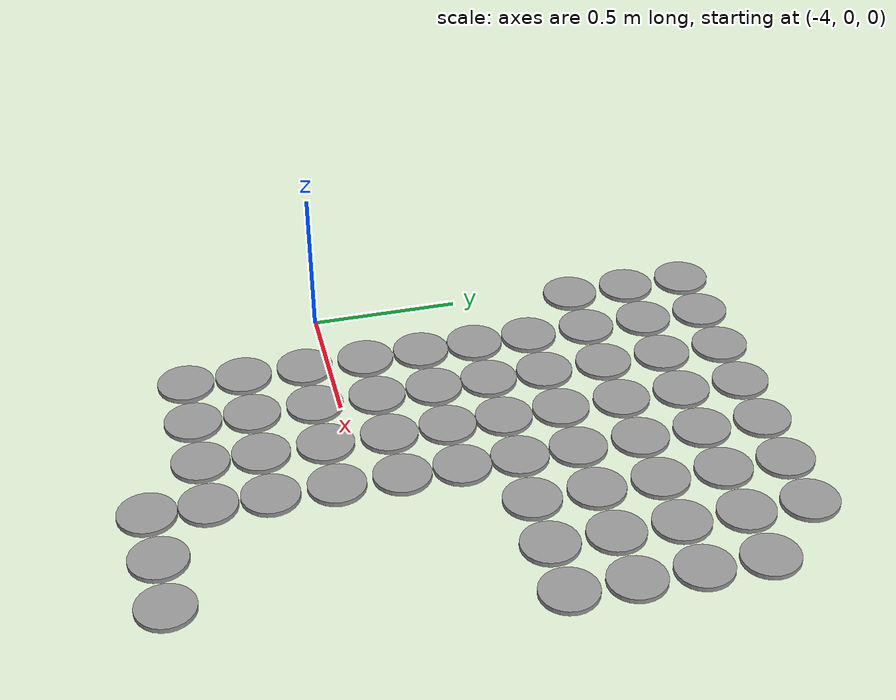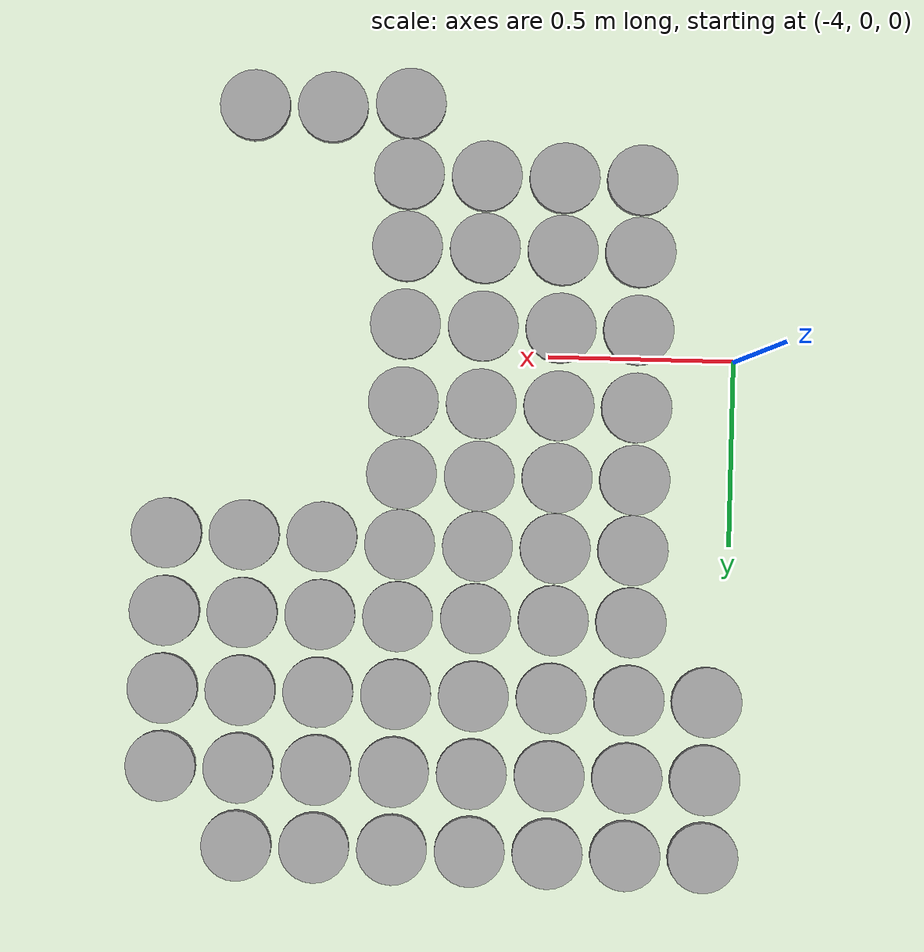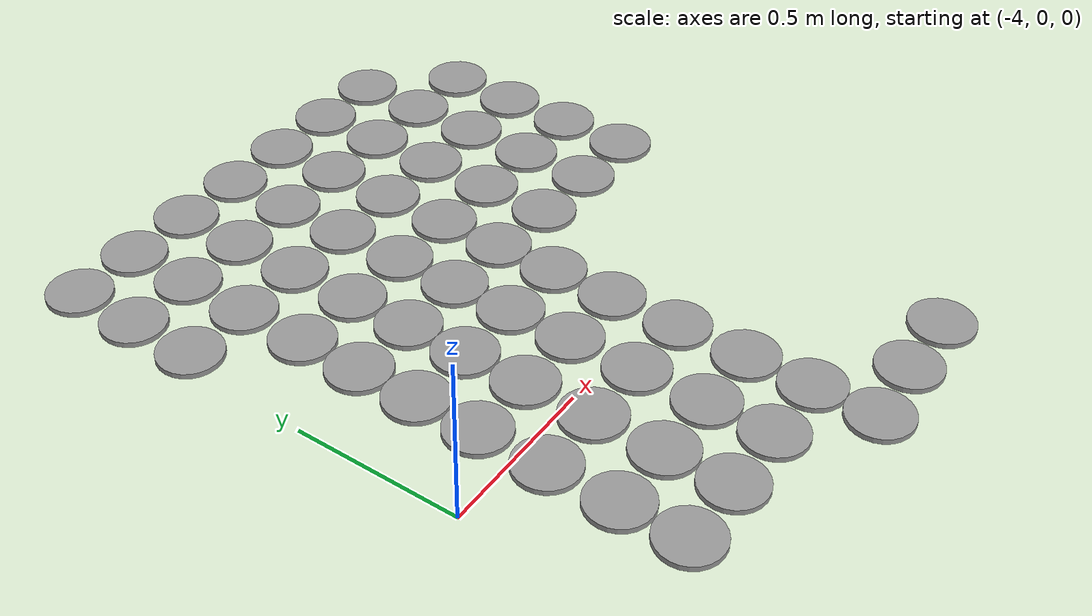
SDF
<sdf version="1.6">
 <world name="default">
  <model name="unit_cylinder_clone_27">
   <pose>-3.95 0.92 0.008117 0 -0 0</pose>
   <link name="link">
    <inertial>
     <mass>1</mass>
     <inertia><ixx>0.145833</ixx><ixy>0</ixy><ixz>0</ixz><iyy>0.145833</iyy><iyz>0</iyz><izz>0.125</izz></inertia>
    </inertial>
    <collision name="collision">
     <geometry><cylinder><radius>0.0950718</radius><length>0.0162339</length></cylinder></geometry>
     <max_contacts>5</max_contacts>
    </collision>
    <visual name="visual">
     <geometry><cylinder><radius>0.0950718</radius><length>0.0162339</length></cylinder></geometry>
     <material>
      <script><name>Gazebo/Grey</name><uri>file://media/materials/scripts/gazebo.material</uri></script>
     </material>
    </visual>
   </link>
  </model>
  <model name="unit_cylinder_clone_28">
   <pose>-3.95 1.13 0.008117 0 -0 0</pose>
   <link name="link">
    <inertial>
     <mass>1</mass>
     <inertia><ixx>0.145833</ixx><ixy>0</ixy><ixz>0</ixz><iyy>0.145833</iyy><iyz>0</iyz><izz>0.125</izz></inertia>
    </inertial>
    <collision name="collision">
     <geometry><cylinder><radius>0.0950718</radius><length>0.0162339</length></cylinder></geometry>
     <max_contacts>5</max_contacts>
    </collision>
    <visual name="visual">
     <geometry><cylinder><radius>0.0950718</radius><length>0.0162339</length></cylinder></geometry>
     <material>
      <script><name>Gazebo/Grey</name><uri>file://media/materials/scripts/gazebo.material</uri></script>
     </material>
    </visual>
   </link>
  </model>
  <model name="unit_cylinder_clone_29">
   <pose>-3.95 1.34 0.008117 0 -0 0</pose>
   <link name="link">
    <inertial>
     <mass>1</mass>
     <inertia><ixx>0.145833</ixx><ixy>0</ixy><ixz>0</ixz><iyy>0.145833</iyy><iyz>0</iyz><izz>0.125</izz></inertia>
    </inertial>
    <collision name="collision">
     <geometry><cylinder><radius>0.0950718</radius><length>0.0162339</length></cylinder></geometry>
     <max_contacts>5</max_contacts>
    </collision>
    <visual name="visual">
     <geometry><cylinder><radius>0.0950718</radius><length>0.0162339</length></cylinder></geometry>
     <material>
      <script><name>Gazebo/Grey</name><uri>file://media/materials/scripts/gazebo.material</uri></script>
     </material>
    </visual>
   </link>
  </model>
  <model name="unit_cylinder_clone_30">
   <pose>-3.74 0.515077 0.008117 0 -0 0</pose>
   <link name="link">
    <inertial>
     <mass>1</mass>
     <inertia><ixx>0.145833</ixx><ixy>0</ixy><ixz>0</ixz><iyy>0.145833</iyy><iyz>0</iyz><izz>0.125</izz></inertia>
    </inertial>
    <collision name="collision">
     <geometry><cylinder><radius>0.0950718</radius><length>0.0162339</length></cylinder></geometry>
     <max_contacts>5</max_contacts>
    </collision>
    <visual name="visual">
     <geometry><cylinder><radius>0.0950718</radius><length>0.0162339</length></cylinder></geometry>
     <material>
      <script><name>Gazebo/Grey</name><uri>file://media/materials/scripts/gazebo.material</uri></script>
     </material>
    </visual>
   </link>
  </model>
  <model name="unit_cylinder_clone_31">
   <pose>-3.74 0.71 0.008117 0 -0 0</pose>
   <link name="link">
    <inertial>
     <mass>1</mass>
     <inertia><ixx>0.145833</ixx><ixy>0</ixy><ixz>0</ixz><iyy>0.145833</iyy><iyz>0</iyz><izz>0.125</izz></inertia>
    </inertial>
    <collision name="collision">
     <geometry><cylinder><radius>0.0950718</radius><length>0.0162339</length></cylinder></geometry>
     <max_contacts>5</max_contacts>
    </collision>
    <visual name="visual">
     <geometry><cylinder><radius>0.0950718</radius><length>0.0162339</length></cylinder></geometry>
     <material>
      <script><name>Gazebo/Grey</name><uri>file://media/materials/scripts/gazebo.material</uri></script>
     </material>
    </visual>
   </link>
  </model>
  <model name="unit_cylinder_clone_32">
   <pose>-3.74 0.92 0.008117 0 -0 0</pose>
   <link name="link">
    <inertial>
     <mass>1</mass>
     <inertia><ixx>0.145833</ixx><ixy>0</ixy><ixz>0</ixz><iyy>0.145833</iyy><iyz>0</iyz><izz>0.125</izz></inertia>
    </inertial>
    <collision name="collision">
     <geometry><cylinder><radius>0.0950718</radius><length>0.0162339</length></cylinder></geometry>
     <max_contacts>5</max_contacts>
    </collision>
    <visual name="visual">
     <geometry><cylinder><radius>0.0950718</radius><length>0.0162339</length></cylinder></geometry>
     <material>
      <script><name>Gazebo/Grey</name><uri>file://media/materials/scripts/gazebo.material</uri></script>
     </material>
    </visual>
   </link>
  </model>
  <model name="unit_cylinder_clone_33">
   <pose>-3.74 1.13 0.008117 0 -0 0</pose>
   <link name="link">
    <inertial>
     <mass>1</mass>
     <inertia><ixx>0.145833</ixx><ixy>0</ixy><ixz>0</ixz><iyy>0.145833</iyy><iyz>0</iyz><izz>0.125</izz></inertia>
    </inertial>
    <collision name="collision">
     <geometry><cylinder><radius>0.0950718</radius><length>0.0162339</length></cylinder></geometry>
     <max_contacts>5</max_contacts>
    </collision>
    <visual name="visual">
     <geometry><cylinder><radius>0.0950718</radius><length>0.0162339</length></cylinder></geometry>
     <material>
      <script><name>Gazebo/Grey</name><uri>file://media/materials/scripts/gazebo.material</uri></script>
     </material>
    </visual>
   </link>
  </model>
  <model name="unit_cylinder_clone_34">
   <pose>-3.74 1.34 0.008117 0 -0 0</pose>
   <link name="link">
    <inertial>
     <mass>1</mass>
     <inertia><ixx>0.145833</ixx><ixy>0</ixy><ixz>0</ixz><iyy>0.145833</iyy><iyz>0</iyz><izz>0.125</izz></inertia>
    </inertial>
    <collision name="collision">
     <geometry><cylinder><radius>0.0950718</radius><length>0.0162339</length></cylinder></geometry>
     <max_contacts>5</max_contacts>
    </collision>
    <visual name="visual">
     <geometry><cylinder><radius>0.0950718</radius><length>0.0162339</length></cylinder></geometry>
     <material>
      <script><name>Gazebo/Grey</name><uri>file://media/materials/scripts/gazebo.material</uri></script>
     </material>
    </visual>
   </link>
  </model>
  <model name="unit_cylinder_clone_35">
   <pose>-3.53 0.515077 0.008117 0 -0 0</pose>
   <link name="link">
    <inertial>
     <mass>1</mass>
     <inertia><ixx>0.145833</ixx><ixy>0</ixy><ixz>0</ixz><iyy>0.145833</iyy><iyz>0</iyz><izz>0.125</izz></inertia>
    </inertial>
    <collision name="collision">
     <geometry><cylinder><radius>0.0950718</radius><length>0.0162339</length></cylinder></geometry>
     <max_contacts>5</max_contacts>
    </collision>
    <visual name="visual">
     <geometry><cylinder><radius>0.0950718</radius><length>0.0162339</length></cylinder></geometry>
     <material>
      <script><name>Gazebo/Grey</name><uri>file://media/materials/scripts/gazebo.material</uri></script>
     </material>
    </visual>
   </link>
  </model>
  <model name="unit_cylinder_clone_36">
   <pose>-3.53 0.71 0.008117 0 -0 0</pose>
   <link name="link">
    <inertial>
     <mass>1</mass>
     <inertia><ixx>0.145833</ixx><ixy>0</ixy><ixz>0</ixz><iyy>0.145833</iyy><iyz>0</iyz><izz>0.125</izz></inertia>
    </inertial>
    <collision name="collision">
     <geometry><cylinder><radius>0.0950718</radius><length>0.0162339</length></cylinder></geometry>
     <max_contacts>5</max_contacts>
    </collision>
    <visual name="visual">
     <geometry><cylinder><radius>0.0950718</radius><length>0.0162339</length></cylinder></geometry>
     <material>
      <script><name>Gazebo/Grey</name><uri>file://media/materials/scripts/gazebo.material</uri></script>
     </material>
    </visual>
   </link>
  </model>
  <model name="unit_cylinder_clone_37">
   <pose>-3.53 0.92 0.008117 0 -0 0</pose>
   <link name="link">
    <inertial>
     <mass>1</mass>
     <inertia><ixx>0.145833</ixx><ixy>0</ixy><ixz>0</ixz><iyy>0.145833</iyy><iyz>0</iyz><izz>0.125</izz></inertia>
    </inertial>
    <collision name="collision">
     <geometry><cylinder><radius>0.0950718</radius><length>0.0162339</length></cylinder></geometry>
     <max_contacts>5</max_contacts>
    </collision>
    <visual name="visual">
     <geometry><cylinder><radius>0.0950718</radius><length>0.0162339</length></cylinder></geometry>
     <material>
      <script><name>Gazebo/Grey</name><uri>file://media/materials/scripts/gazebo.material</uri></script>
     </material>
    </visual>
   </link>
  </model>
  <model name="unit_cylinder_clone_38">
   <pose>-3.53 1.13 0.008117 0 -0 0</pose>
   <link name="link">
    <inertial>
     <mass>1</mass>
     <inertia><ixx>0.145833</ixx><ixy>0</ixy><ixz>0</ixz><iyy>0.145833</iyy><iyz>0</iyz><izz>0.125</izz></inertia>
    </inertial>
    <collision name="collision">
     <geometry><cylinder><radius>0.0950718</radius><length>0.0162339</length></cylinder></geometry>
     <max_contacts>5</max_contacts>
    </collision>
    <visual name="visual">
     <geometry><cylinder><radius>0.0950718</radius><length>0.0162339</length></cylinder></geometry>
     <material>
      <script><name>Gazebo/Grey</name><uri>file://media/materials/scripts/gazebo.material</uri></script>
     </material>
    </visual>
   </link>
  </model>
  <model name="unit_cylinder_clone_39">
   <pose>-3.53 1.34 0.008117 0 -0 0</pose>
   <link name="link">
    <inertial>
     <mass>1</mass>
     <inertia><ixx>0.145833</ixx><ixy>0</ixy><ixz>0</ixz><iyy>0.145833</iyy><iyz>0</iyz><izz>0.125</izz></inertia>
    </inertial>
    <collision name="collision">
     <geometry><cylinder><radius>0.0950718</radius><length>0.0162339</length></cylinder></geometry>
     <max_contacts>5</max_contacts>
    </collision>
    <visual name="visual">
     <geometry><cylinder><radius>0.0950718</radius><length>0.0162339</length></cylinder></geometry>
     <material>
      <script><name>Gazebo/Grey</name><uri>file://media/materials/scripts/gazebo.material</uri></script>
     </material>
    </visual>
   </link>
  </model>
  <model name="unit_cylinder_clone_40">
   <pose>-3.32 0.515077 0.008117 0 -0 0</pose>
   <link name="link">
    <inertial>
     <mass>1</mass>
     <inertia><ixx>0.145833</ixx><ixy>0</ixy><ixz>0</ixz><iyy>0.145833</iyy><iyz>0</iyz><izz>0.125</izz></inertia>
    </inertial>
    <collision name="collision">
     <geometry><cylinder><radius>0.0950718</radius><length>0.0162339</length></cylinder></geometry>
     <max_contacts>5</max_contacts>
    </collision>
    <visual name="visual">
     <geometry><cylinder><radius>0.0950718</radius><length>0.0162339</length></cylinder></geometry>
     <material>
      <script><name>Gazebo/Grey</name><uri>file://media/materials/scripts/gazebo.material</uri></script>
     </material>
    </visual>
   </link>
  </model>
  <model name="unit_cylinder_clone_41">
   <pose>-3.32 0.71 0.008117 0 -0 0</pose>
   <link name="link">
    <inertial>
     <mass>1</mass>
     <inertia><ixx>0.145833</ixx><ixy>0</ixy><ixz>0</ixz><iyy>0.145833</iyy><iyz>0</iyz><izz>0.125</izz></inertia>
    </inertial>
    <collision name="collision">
     <geometry><cylinder><radius>0.0950718</radius><length>0.0162339</length></cylinder></geometry>
     <max_contacts>5</max_contacts>
    </collision>
    <visual name="visual">
     <geometry><cylinder><radius>0.0950718</radius><length>0.0162339</length></cylinder></geometry>
     <material>
      <script><name>Gazebo/Grey</name><uri>file://media/materials/scripts/gazebo.material</uri></script>
     </material>
    </visual>
   </link>
  </model>
  <model name="unit_cylinder_clone_42">
   <pose>-3.32 0.92 0.008117 0 -0 0</pose>
   <link name="link">
    <inertial>
     <mass>1</mass>
     <inertia><ixx>0.145833</ixx><ixy>0</ixy><ixz>0</ixz><iyy>0.145833</iyy><iyz>0</iyz><izz>0.125</izz></inertia>
    </inertial>
    <collision name="collision">
     <geometry><cylinder><radius>0.0950718</radius><length>0.0162339</length></cylinder></geometry>
     <max_contacts>5</max_contacts>
    </collision>
    <visual name="visual">
     <geometry><cylinder><radius>0.0950718</radius><length>0.0162339</length></cylinder></geometry>
     <material>
      <script><name>Gazebo/Grey</name><uri>file://media/materials/scripts/gazebo.material</uri></script>
     </material>
    </visual>
   </link>
  </model>
  <model name="unit_cylinder_clone_43">
   <pose>-3.32 1.13 0.008117 0 -0 0</pose>
   <link name="link">
    <inertial>
     <mass>1</mass>
     <inertia><ixx>0.145833</ixx><ixy>0</ixy><ixz>0</ixz><iyy>0.145833</iyy><iyz>0</iyz><izz>0.125</izz></inertia>
    </inertial>
    <collision name="collision">
     <geometry><cylinder><radius>0.0950718</radius><length>0.0162339</length></cylinder></geometry>
     <max_contacts>5</max_contacts>
    </collision>
    <visual name="visual">
     <geometry><cylinder><radius>0.0950718</radius><length>0.0162339</length></cylinder></geometry>
     <material>
      <script><name>Gazebo/Grey</name><uri>file://media/materials/scripts/gazebo.material</uri></script>
     </material>
    </visual>
   </link>
  </model>
  <model name="unit_cylinder_clone_44">
   <pose>-3.32 1.34 0.008117 0 -0 0</pose>
   <link name="link">
    <inertial>
     <mass>1</mass>
     <inertia><ixx>0.145833</ixx><ixy>0</ixy><ixz>0</ixz><iyy>0.145833</iyy><iyz>0</iyz><izz>0.125</izz></inertia>
    </inertial>
    <collision name="collision">
     <geometry><cylinder><radius>0.0950718</radius><length>0.0162339</length></cylinder></geometry>
     <max_contacts>5</max_contacts>
    </collision>
    <visual name="visual">
     <geometry><cylinder><radius>0.0950718</radius><length>0.0162339</length></cylinder></geometry>
     <material>
      <script><name>Gazebo/Grey</name><uri>file://media/materials/scripts/gazebo.material</uri></script>
     </material>
    </visual>
   </link>
  </model>
  <model name="unit_cylinder_clone_45">
   <pose>-3.11 0.515077 0.008117 0 -0 0</pose>
   <link name="link">
    <inertial>
     <mass>1</mass>
     <inertia><ixx>0.145833</ixx><ixy>0</ixy><ixz>0</ixz><iyy>0.145833</iyy><iyz>0</iyz><izz>0.125</izz></inertia>
    </inertial>
    <collision name="collision">
     <geometry><cylinder><radius>0.0950718</radius><length>0.0162339</length></cylinder></geometry>
     <max_contacts>5</max_contacts>
    </collision>
    <visual name="visual">
     <geometry><cylinder><radius>0.0950718</radius><length>0.0162339</length></cylinder></geometry>
     <material>
      <script><name>Gazebo/Grey</name><uri>file://media/materials/scripts/gazebo.material</uri></script>
     </material>
    </visual>
   </link>
  </model>
  <model name="unit_cylinder_clone_46">
   <pose>-3.11 0.71 0.008117 0 -0 0</pose>
   <link name="link">
    <inertial>
     <mass>1</mass>
     <inertia><ixx>0.145833</ixx><ixy>0</ixy><ixz>0</ixz><iyy>0.145833</iyy><iyz>0</iyz><izz>0.125</izz></inertia>
    </inertial>
    <collision name="collision">
     <geometry><cylinder><radius>0.0950718</radius><length>0.0162339</length></cylinder></geometry>
     <max_contacts>5</max_contacts>
    </collision>
    <visual name="visual">
     <geometry><cylinder><radius>0.0950718</radius><length>0.0162339</length></cylinder></geometry>
     <material>
      <script><name>Gazebo/Grey</name><uri>file://media/materials/scripts/gazebo.material</uri></script>
     </material>
    </visual>
   </link>
  </model>
  <model name="unit_cylinder_clone_47">
   <pose>-3.11 0.92 0.008117 0 -0 0</pose>
   <link name="link">
    <inertial>
     <mass>1</mass>
     <inertia><ixx>0.145833</ixx><ixy>0</ixy><ixz>0</ixz><iyy>0.145833</iyy><iyz>0</iyz><izz>0.125</izz></inertia>
    </inertial>
    <collision name="collision">
     <geometry><cylinder><radius>0.0950718</radius><length>0.0162339</length></cylinder></geometry>
     <max_contacts>5</max_contacts>
    </collision>
    <visual name="visual">
     <geometry><cylinder><radius>0.0950718</radius><length>0.0162339</length></cylinder></geometry>
     <material>
      <script><name>Gazebo/Grey</name><uri>file://media/materials/scripts/gazebo.material</uri></script>
     </material>
    </visual>
   </link>
  </model>
  <model name="unit_cylinder_clone_48">
   <pose>-3.11 1.13 0.008117 0 -0 0</pose>
   <link name="link">
    <inertial>
     <mass>1</mass>
     <inertia><ixx>0.145833</ixx><ixy>0</ixy><ixz>0</ixz><iyy>0.145833</iyy><iyz>0</iyz><izz>0.125</izz></inertia>
    </inertial>
    <collision name="collision">
     <geometry><cylinder><radius>0.0950718</radius><length>0.0162339</length></cylinder></geometry>
     <max_contacts>5</max_contacts>
    </collision>
    <visual name="visual">
     <geometry><cylinder><radius>0.0950718</radius><length>0.0162339</length></cylinder></geometry>
     <material>
      <script><name>Gazebo/Grey</name><uri>file://media/materials/scripts/gazebo.material</uri></script>
     </material>
    </visual>
   </link>
  </model>
  <model name="unit_cylinder_clone_49">
   <pose>-3.11 1.34 0.008117 0 -0 0</pose>
   <link name="link">
    <inertial>
     <mass>1</mass>
     <inertia><ixx>0.145833</ixx><ixy>0</ixy><ixz>0</ixz><iyy>0.145833</iyy><iyz>0</iyz><izz>0.125</izz></inertia>
    </inertial>
    <collision name="collision">
     <geometry><cylinder><radius>0.0950718</radius><length>0.0162339</length></cylinder></geometry>
     <max_contacts>5</max_contacts>
    </collision>
    <visual name="visual">
     <geometry><cylinder><radius>0.0950718</radius><length>0.0162339</length></cylinder></geometry>
     <material>
      <script><name>Gazebo/Grey</name><uri>file://media/materials/scripts/gazebo.material</uri></script>
     </material>
    </visual>
   </link>
  </model>
  <model name="unit_cylinder_clone_50">
   <pose>-2.9 0.5 0.008117 0 -0 0</pose>
   <link name="link">
    <inertial>
     <mass>1</mass>
     <inertia><ixx>0.145833</ixx><ixy>0</ixy><ixz>0</ixz><iyy>0.145833</iyy><iyz>0</iyz><izz>0.125</izz></inertia>
    </inertial>
    <collision name="collision">
     <geometry><cylinder><radius>0.0950718</radius><length>0.0162339</length></cylinder></geometry>
     <max_contacts>5</max_contacts>
    </collision>
    <visual name="visual">
     <geometry><cylinder><radius>0.0950718</radius><length>0.0162339</length></cylinder></geometry>
     <material>
      <script><name>Gazebo/Grey</name><uri>file://media/materials/scripts/gazebo.material</uri></script>
     </material>
    </visual>
   </link>
  </model>
  <model name="unit_cylinder_clone_51">
   <pose>-2.9 0.71 0.008117 0 -0 0</pose>
   <link name="link">
    <inertial>
     <mass>1</mass>
     <inertia><ixx>0.145833</ixx><ixy>0</ixy><ixz>0</ixz><iyy>0.145833</iyy><iyz>0</iyz><izz>0.125</izz></inertia>
    </inertial>
    <collision name="collision">
     <geometry><cylinder><radius>0.0950718</radius><length>0.0162339</length></cylinder></geometry>
     <max_contacts>5</max_contacts>
    </collision>
    <visual name="visual">
     <geometry><cylinder><radius>0.0950718</radius><length>0.0162339</length></cylinder></geometry>
     <material>
      <script><name>Gazebo/Grey</name><uri>file://media/materials/scripts/gazebo.material</uri></script>
     </material>
    </visual>
   </link>
  </model>
  <model name="unit_cylinder_clone_52">
   <pose>-2.9 0.92 0.008117 0 -0 0</pose>
   <link name="link">
    <inertial>
     <mass>1</mass>
     <inertia><ixx>0.145833</ixx><ixy>0</ixy><ixz>0</ixz><iyy>0.145833</iyy><iyz>0</iyz><izz>0.125</izz></inertia>
    </inertial>
    <collision name="collision">
     <geometry><cylinder><radius>0.0950718</radius><length>0.0162339</length></cylinder></geometry>
     <max_contacts>5</max_contacts>
    </collision>
    <visual name="visual">
     <geometry><cylinder><radius>0.0950718</radius><length>0.0162339</length></cylinder></geometry>
     <material>
      <script><name>Gazebo/Grey</name><uri>file://media/materials/scripts/gazebo.material</uri></script>
     </material>
    </visual>
   </link>
  </model>
  <model name="unit_cylinder_clone_53">
   <pose>-2.9 1.13 0.008117 0 -0 0</pose>
   <link name="link">
    <inertial>
     <mass>1</mass>
     <inertia><ixx>0.145833</ixx><ixy>0</ixy><ixz>0</ixz><iyy>0.145833</iyy><iyz>0</iyz><izz>0.125</izz></inertia>
    </inertial>
    <collision name="collision">
     <geometry><cylinder><radius>0.0950718</radius><length>0.0162339</length></cylinder></geometry>
     <max_contacts>5</max_contacts>
    </collision>
    <visual name="visual">
     <geometry><cylinder><radius>0.0950718</radius><length>0.0162339</length></cylinder></geometry>
     <material>
      <script><name>Gazebo/Grey</name><uri>file://media/materials/scripts/gazebo.material</uri></script>
     </material>
    </visual>
   </link>
  </model>
  <model name="unit_cylinder_clone_54">
   <pose>-2.9 1.34 0.008117 0 -0 0</pose>
   <link name="link">
    <inertial>
     <mass>1</mass>
     <inertia><ixx>0.145833</ixx><ixy>0</ixy><ixz>0</ixz><iyy>0.145833</iyy><iyz>0</iyz><izz>0.125</izz></inertia>
    </inertial>
    <collision name="collision">
     <geometry><cylinder><radius>0.0950718</radius><length>0.0162339</length></cylinder></geometry>
     <max_contacts>5</max_contacts>
    </collision>
    <visual name="visual">
     <geometry><cylinder><radius>0.0950718</radius><length>0.0162339</length></cylinder></geometry>
     <material>
      <script><name>Gazebo/Grey</name><uri>file://media/materials/scripts/gazebo.material</uri></script>
     </material>
    </visual>
   </link>
  </model>
  <model name="unit_cylinder_clone_55">
   <pose>-2.69 0.5 0.008117 0 -0 0</pose>
   <link name="link">
    <inertial>
     <mass>1</mass>
     <inertia><ixx>0.145833</ixx><ixy>0</ixy><ixz>0</ixz><iyy>0.145833</iyy><iyz>0</iyz><izz>0.125</izz></inertia>
    </inertial>
    <collision name="collision">
     <geometry><cylinder><radius>0.0950718</radius><length>0.0162339</length></cylinder></geometry>
     <max_contacts>5</max_contacts>
    </collision>
    <visual name="visual">
     <geometry><cylinder><radius>0.0950718</radius><length>0.0162339</length></cylinder></geometry>
     <material>
      <script><name>Gazebo/Grey</name><uri>file://media/materials/scripts/gazebo.material</uri></script>
     </material>
    </visual>
   </link>
  </model>
  <model name="unit_cylinder_clone_56">
   <pose>-2.69 0.71 0.008117 0 -0 0</pose>
   <link name="link">
    <inertial>
     <mass>1</mass>
     <inertia><ixx>0.145833</ixx><ixy>0</ixy><ixz>0</ixz><iyy>0.145833</iyy><iyz>0</iyz><izz>0.125</izz></inertia>
    </inertial>
    <collision name="collision">
     <geometry><cylinder><radius>0.0950718</radius><length>0.0162339</length></cylinder></geometry>
     <max_contacts>5</max_contacts>
    </collision>
    <visual name="visual">
     <geometry><cylinder><radius>0.0950718</radius><length>0.0162339</length></cylinder></geometry>
     <material>
      <script><name>Gazebo/Grey</name><uri>file://media/materials/scripts/gazebo.material</uri></script>
     </material>
    </visual>
   </link>
  </model>
  <model name="unit_cylinder_clone_57">
   <pose>-2.69 0.92 0.008117 0 -0 0</pose>
   <link name="link">
    <inertial>
     <mass>1</mass>
     <inertia><ixx>0.145833</ixx><ixy>0</ixy><ixz>0</ixz><iyy>0.145833</iyy><iyz>0</iyz><izz>0.125</izz></inertia>
    </inertial>
    <collision name="collision">
     <geometry><cylinder><radius>0.0950718</radius><length>0.0162339</length></cylinder></geometry>
     <max_contacts>5</max_contacts>
    </collision>
    <visual name="visual">
     <geometry><cylinder><radius>0.0950718</radius><length>0.0162339</length></cylinder></geometry>
     <material>
      <script><name>Gazebo/Grey</name><uri>file://media/materials/scripts/gazebo.material</uri></script>
     </material>
    </visual>
   </link>
  </model>
  <model name="unit_cylinder_clone_58">
   <pose>-2.69 1.13 0.008117 0 -0 0</pose>
   <link name="link">
    <inertial>
     <mass>1</mass>
     <inertia><ixx>0.145833</ixx><ixy>0</ixy><ixz>0</ixz><iyy>0.145833</iyy><iyz>0</iyz><izz>0.125</izz></inertia>
    </inertial>
    <collision name="collision">
     <geometry><cylinder><radius>0.0950718</radius><length>0.0162339</length></cylinder></geometry>
     <max_contacts>5</max_contacts>
    </collision>
    <visual name="visual">
     <geometry><cylinder><radius>0.0950718</radius><length>0.0162339</length></cylinder></geometry>
     <material>
      <script><name>Gazebo/Grey</name><uri>file://media/materials/scripts/gazebo.material</uri></script>
     </material>
    </visual>
   </link>
  </model>
  <model name="unit_cylinder_clone_59">
   <pose>-2.69 1.34 0.008117 0 -0 0</pose>
   <link name="link">
    <inertial>
     <mass>1</mass>
     <inertia><ixx>0.145833</ixx><ixy>0</ixy><ixz>0</ixz><iyy>0.145833</iyy><iyz>0</iyz><izz>0.125</izz></inertia>
    </inertial>
    <collision name="collision">
     <geometry><cylinder><radius>0.0950718</radius><length>0.0162339</length></cylinder></geometry>
     <max_contacts>5</max_contacts>
    </collision>
    <visual name="visual">
     <geometry><cylinder><radius>0.0950718</radius><length>0.0162339</length></cylinder></geometry>
     <material>
      <script><name>Gazebo/Grey</name><uri>file://media/materials/scripts/gazebo.material</uri></script>
     </material>
    </visual>
   </link>
  </model>
  <model name="unit_cylinder_clone_60">
   <pose>-2.48 0.5 0.008117 0 -0 0</pose>
   <link name="link">
    <inertial>
     <mass>1</mass>
     <inertia><ixx>0.145833</ixx><ixy>0</ixy><ixz>0</ixz><iyy>0.145833</iyy><iyz>0</iyz><izz>0.125</izz></inertia>
    </inertial>
    <collision name="collision">
     <geometry><cylinder><radius>0.0950718</radius><length>0.0162339</length></cylinder></geometry>
     <max_contacts>5</max_contacts>
    </collision>
    <visual name="visual">
     <geometry><cylinder><radius>0.0950718</radius><length>0.0162339</length></cylinder></geometry>
     <material>
      <script><name>Gazebo/Grey</name><uri>file://media/materials/scripts/gazebo.material</uri></script>
     </material>
    </visual>
   </link>
  </model>
  <model name="unit_cylinder_clone_61">
   <pose>-2.48 0.71 0.008117 0 -0 0</pose>
   <link name="link">
    <inertial>
     <mass>1</mass>
     <inertia><ixx>0.145833</ixx><ixy>0</ixy><ixz>0</ixz><iyy>0.145833</iyy><iyz>0</iyz><izz>0.125</izz></inertia>
    </inertial>
    <collision name="collision">
     <geometry><cylinder><radius>0.0950718</radius><length>0.0162339</length></cylinder></geometry>
     <max_contacts>5</max_contacts>
    </collision>
    <visual name="visual">
     <geometry><cylinder><radius>0.0950718</radius><length>0.0162339</length></cylinder></geometry>
     <material>
      <script><name>Gazebo/Grey</name><uri>file://media/materials/scripts/gazebo.material</uri></script>
     </material>
    </visual>
   </link>
  </model>
  <model name="unit_cylinder_clone_62">
   <pose>-2.48 0.92 0.008117 0 -0 0</pose>
   <link name="link">
    <inertial>
     <mass>1</mass>
     <inertia><ixx>0.145833</ixx><ixy>0</ixy><ixz>0</ixz><iyy>0.145833</iyy><iyz>0</iyz><izz>0.125</izz></inertia>
    </inertial>
    <collision name="collision">
     <geometry><cylinder><radius>0.0950718</radius><length>0.0162339</length></cylinder></geometry>
     <max_contacts>5</max_contacts>
    </collision>
    <visual name="visual">
     <geometry><cylinder><radius>0.0950718</radius><length>0.0162339</length></cylinder></geometry>
     <material>
      <script><name>Gazebo/Grey</name><uri>file://media/materials/scripts/gazebo.material</uri></script>
     </material>
    </visual>
   </link>
  </model>
  <model name="unit_cylinder_clone_63">
   <pose>-2.48 1.13 0.008117 0 -0 0</pose>
   <link name="link">
    <inertial>
     <mass>1</mass>
     <inertia><ixx>0.145833</ixx><ixy>0</ixy><ixz>0</ixz><iyy>0.145833</iyy><iyz>0</iyz><izz>0.125</izz></inertia>
    </inertial>
    <collision name="collision">
     <geometry><cylinder><radius>0.0950718</radius><length>0.0162339</length></cylinder></geometry>
     <max_contacts>5</max_contacts>
    </collision>
    <visual name="visual">
     <geometry><cylinder><radius>0.0950718</radius><length>0.0162339</length></cylinder></geometry>
     <material>
      <script><name>Gazebo/Grey</name><uri>file://media/materials/scripts/gazebo.material</uri></script>
     </material>
    </visual>
   </link>
  </model>
  <model name="unit_cylinder_clone_280">
   <pose>-3.74 -0.484923 0.008117 0 -0 0</pose>
   <link name="link">
    <inertial>
     <mass>1</mass>
     <inertia><ixx>0.145833</ixx><ixy>0</ixy><ixz>0</ixz><iyy>0.145833</iyy><iyz>0</iyz><izz>0.125</izz></inertia>
    </inertial>
    <collision name="collision">
     <geometry><cylinder><radius>0.0950718</radius><length>0.0162339</length></cylinder></geometry>
     <max_contacts>5</max_contacts>
    </collision>
    <visual name="visual">
     <geometry><cylinder><radius>0.0950718</radius><length>0.0162339</length></cylinder></geometry>
     <material>
      <script><name>Gazebo/Grey</name><uri>file://media/materials/scripts/gazebo.material</uri></script>
     </material>
    </visual>
   </link>
  </model>
  <model name="unit_cylinder_clone_281">
   <pose>-3.74 -0.29 0.008117 0 -0 0</pose>
   <link name="link">
    <inertial>
     <mass>1</mass>
     <inertia><ixx>0.145833</ixx><ixy>0</ixy><ixz>0</ixz><iyy>0.145833</iyy><iyz>0</iyz><izz>0.125</izz></inertia>
    </inertial>
    <collision name="collision">
     <geometry><cylinder><radius>0.0950718</radius><length>0.0162339</length></cylinder></geometry>
     <max_contacts>5</max_contacts>
    </collision>
    <visual name="visual">
     <geometry><cylinder><radius>0.0950718</radius><length>0.0162339</length></cylinder></geometry>
     <material>
      <script><name>Gazebo/Grey</name><uri>file://media/materials/scripts/gazebo.material</uri></script>
     </material>
    </visual>
   </link>
  </model>
  <model name="unit_cylinder_clone_282">
   <pose>-3.74 -0.08 0.008117 0 -0 0</pose>
   <link name="link">
    <inertial>
     <mass>1</mass>
     <inertia><ixx>0.145833</ixx><ixy>0</ixy><ixz>0</ixz><iyy>0.145833</iyy><iyz>0</iyz><izz>0.125</izz></inertia>
    </inertial>
    <collision name="collision">
     <geometry><cylinder><radius>0.0950718</radius><length>0.0162339</length></cylinder></geometry>
     <max_contacts>5</max_contacts>
    </collision>
    <visual name="visual">
     <geometry><cylinder><radius>0.0950718</radius><length>0.0162339</length></cylinder></geometry>
     <material>
      <script><name>Gazebo/Grey</name><uri>file://media/materials/scripts/gazebo.material</uri></script>
     </material>
    </visual>
   </link>
  </model>
  <model name="unit_cylinder_clone_283">
   <pose>-3.74 0.13 0.008117 0 -0 0</pose>
   <link name="link">
    <inertial>
     <mass>1</mass>
     <inertia><ixx>0.145833</ixx><ixy>0</ixy><ixz>0</ixz><iyy>0.145833</iyy><iyz>0</iyz><izz>0.125</izz></inertia>
    </inertial>
    <collision name="collision">
     <geometry><cylinder><radius>0.0950718</radius><length>0.0162339</length></cylinder></geometry>
     <max_contacts>5</max_contacts>
    </collision>
    <visual name="visual">
     <geometry><cylinder><radius>0.0950718</radius><length>0.0162339</length></cylinder></geometry>
     <material>
      <script><name>Gazebo/Grey</name><uri>file://media/materials/scripts/gazebo.material</uri></script>
     </material>
    </visual>
   </link>
  </model>
  <model name="unit_cylinder_clone_284">
   <pose>-3.74 0.324923 0.008117 -0 -0 -0</pose>
   <link name="link">
    <inertial>
     <mass>1</mass>
     <inertia><ixx>0.145833</ixx><ixy>0</ixy><ixz>0</ixz><iyy>0.145833</iyy><iyz>0</iyz><izz>0.125</izz></inertia>
    </inertial>
    <collision name="collision">
     <geometry><cylinder><radius>0.0950718</radius><length>0.0162339</length></cylinder></geometry>
     <max_contacts>5</max_contacts>
    </collision>
    <visual name="visual">
     <geometry><cylinder><radius>0.0950718</radius><length>0.0162339</length></cylinder></geometry>
     <material>
      <script><name>Gazebo/Grey</name><uri>file://media/materials/scripts/gazebo.material</uri></script>
     </material>
    </visual>
   </link>
  </model>
  <model name="unit_cylinder_clone_285">
   <pose>-3.53 -0.484923 0.008117 0 -0 0</pose>
   <link name="link">
    <inertial>
     <mass>1</mass>
     <inertia><ixx>0.145833</ixx><ixy>0</ixy><ixz>0</ixz><iyy>0.145833</iyy><iyz>0</iyz><izz>0.125</izz></inertia>
    </inertial>
    <collision name="collision">
     <geometry><cylinder><radius>0.0950718</radius><length>0.0162339</length></cylinder></geometry>
     <max_contacts>5</max_contacts>
    </collision>
    <visual name="visual">
     <geometry><cylinder><radius>0.0950718</radius><length>0.0162339</length></cylinder></geometry>
     <material>
      <script><name>Gazebo/Grey</name><uri>file://media/materials/scripts/gazebo.material</uri></script>
     </material>
    </visual>
   </link>
  </model>
  <model name="unit_cylinder_clone_286">
   <pose>-3.53 -0.29 0.008117 0 -0 0</pose>
   <link name="link">
    <inertial>
     <mass>1</mass>
     <inertia><ixx>0.145833</ixx><ixy>0</ixy><ixz>0</ixz><iyy>0.145833</iyy><iyz>0</iyz><izz>0.125</izz></inertia>
    </inertial>
    <collision name="collision">
     <geometry><cylinder><radius>0.0950718</radius><length>0.0162339</length></cylinder></geometry>
     <max_contacts>5</max_contacts>
    </collision>
    <visual name="visual">
     <geometry><cylinder><radius>0.0950718</radius><length>0.0162339</length></cylinder></geometry>
     <material>
      <script><name>Gazebo/Grey</name><uri>file://media/materials/scripts/gazebo.material</uri></script>
     </material>
    </visual>
   </link>
  </model>
  <model name="unit_cylinder_clone_287">
   <pose>-3.53 -0.08 0.008117 0 -0 0</pose>
   <link name="link">
    <inertial>
     <mass>1</mass>
     <inertia><ixx>0.145833</ixx><ixy>0</ixy><ixz>0</ixz><iyy>0.145833</iyy><iyz>0</iyz><izz>0.125</izz></inertia>
    </inertial>
    <collision name="collision">
     <geometry><cylinder><radius>0.0950718</radius><length>0.0162339</length></cylinder></geometry>
     <max_contacts>5</max_contacts>
    </collision>
    <visual name="visual">
     <geometry><cylinder><radius>0.0950718</radius><length>0.0162339</length></cylinder></geometry>
     <material>
      <script><name>Gazebo/Grey</name><uri>file://media/materials/scripts/gazebo.material</uri></script>
     </material>
    </visual>
   </link>
  </model>
  <model name="unit_cylinder_clone_288">
   <pose>-3.53 0.13 0.008117 0 -0 0</pose>
   <link name="link">
    <inertial>
     <mass>1</mass>
     <inertia><ixx>0.145833</ixx><ixy>0</ixy><ixz>0</ixz><iyy>0.145833</iyy><iyz>0</iyz><izz>0.125</izz></inertia>
    </inertial>
    <collision name="collision">
     <geometry><cylinder><radius>0.0950718</radius><length>0.0162339</length></cylinder></geometry>
     <max_contacts>5</max_contacts>
    </collision>
    <visual name="visual">
     <geometry><cylinder><radius>0.0950718</radius><length>0.0162339</length></cylinder></geometry>
     <material>
      <script><name>Gazebo/Grey</name><uri>file://media/materials/scripts/gazebo.material</uri></script>
     </material>
    </visual>
   </link>
  </model>
  <model name="unit_cylinder_clone_289">
   <pose>-3.53 0.324923 0.008117 -0 -0 -0</pose>
   <link name="link">
    <inertial>
     <mass>1</mass>
     <inertia><ixx>0.145833</ixx><ixy>0</ixy><ixz>0</ixz><iyy>0.145833</iyy><iyz>0</iyz><izz>0.125</izz></inertia>
    </inertial>
    <collision name="collision">
     <geometry><cylinder><radius>0.0950718</radius><length>0.0162339</length></cylinder></geometry>
     <max_contacts>5</max_contacts>
    </collision>
    <visual name="visual">
     <geometry><cylinder><radius>0.0950718</radius><length>0.0162339</length></cylinder></geometry>
     <material>
      <script><name>Gazebo/Grey</name><uri>file://media/materials/scripts/gazebo.material</uri></script>
     </material>
    </visual>
   </link>
  </model>
  <model name="unit_cylinder_clone_290">
   <pose>-3.32 -0.484923 0.008117 0 -0 0</pose>
   <link name="link">
    <inertial>
     <mass>1</mass>
     <inertia><ixx>0.145833</ixx><ixy>0</ixy><ixz>0</ixz><iyy>0.145833</iyy><iyz>0</iyz><izz>0.125</izz></inertia>
    </inertial>
    <collision name="collision">
     <geometry><cylinder><radius>0.0950718</radius><length>0.0162339</length></cylinder></geometry>
     <max_contacts>5</max_contacts>
    </collision>
    <visual name="visual">
     <geometry><cylinder><radius>0.0950718</radius><length>0.0162339</length></cylinder></geometry>
     <material>
      <script><name>Gazebo/Grey</name><uri>file://media/materials/scripts/gazebo.material</uri></script>
     </material>
    </visual>
   </link>
  </model>
  <model name="unit_cylinder_clone_291">
   <pose>-3.32 -0.29 0.008117 0 -0 0</pose>
   <link name="link">
    <inertial>
     <mass>1</mass>
     <inertia><ixx>0.145833</ixx><ixy>0</ixy><ixz>0</ixz><iyy>0.145833</iyy><iyz>0</iyz><izz>0.125</izz></inertia>
    </inertial>
    <collision name="collision">
     <geometry><cylinder><radius>0.0950718</radius><length>0.0162339</length></cylinder></geometry>
     <max_contacts>5</max_contacts>
    </collision>
    <visual name="visual">
     <geometry><cylinder><radius>0.0950718</radius><length>0.0162339</length></cylinder></geometry>
     <material>
      <script><name>Gazebo/Grey</name><uri>file://media/materials/scripts/gazebo.material</uri></script>
     </material>
    </visual>
   </link>
  </model>
  <model name="unit_cylinder_clone_292">
   <pose>-3.32 -0.08 0.008117 0 -0 0</pose>
   <link name="link">
    <inertial>
     <mass>1</mass>
     <inertia><ixx>0.145833</ixx><ixy>0</ixy><ixz>0</ixz><iyy>0.145833</iyy><iyz>0</iyz><izz>0.125</izz></inertia>
    </inertial>
    <collision name="collision">
     <geometry><cylinder><radius>0.0950718</radius><length>0.0162339</length></cylinder></geometry>
     <max_contacts>5</max_contacts>
    </collision>
    <visual name="visual">
     <geometry><cylinder><radius>0.0950718</radius><length>0.0162339</length></cylinder></geometry>
     <material>
      <script><name>Gazebo/Grey</name><uri>file://media/materials/scripts/gazebo.material</uri></script>
     </material>
    </visual>
   </link>
  </model>
  <model name="unit_cylinder_clone_293">
   <pose>-3.32 0.13 0.008117 0 -0 0</pose>
   <link name="link">
    <inertial>
     <mass>1</mass>
     <inertia><ixx>0.145833</ixx><ixy>0</ixy><ixz>0</ixz><iyy>0.145833</iyy><iyz>0</iyz><izz>0.125</izz></inertia>
    </inertial>
    <collision name="collision">
     <geometry><cylinder><radius>0.0950718</radius><length>0.0162339</length></cylinder></geometry>
     <max_contacts>5</max_contacts>
    </collision>
    <visual name="visual">
     <geometry><cylinder><radius>0.0950718</radius><length>0.0162339</length></cylinder></geometry>
     <material>
      <script><name>Gazebo/Grey</name><uri>file://media/materials/scripts/gazebo.material</uri></script>
     </material>
    </visual>
   </link>
  </model>
  <model name="unit_cylinder_clone_294">
   <pose>-3.32 0.324923 0.008117 -0 -0 -0</pose>
   <link name="link">
    <inertial>
     <mass>1</mass>
     <inertia><ixx>0.145833</ixx><ixy>0</ixy><ixz>0</ixz><iyy>0.145833</iyy><iyz>0</iyz><izz>0.125</izz></inertia>
    </inertial>
    <collision name="collision">
     <geometry><cylinder><radius>0.0950718</radius><length>0.0162339</length></cylinder></geometry>
     <max_contacts>5</max_contacts>
    </collision>
    <visual name="visual">
     <geometry><cylinder><radius>0.0950718</radius><length>0.0162339</length></cylinder></geometry>
     <material>
      <script><name>Gazebo/Grey</name><uri>file://media/materials/scripts/gazebo.material</uri></script>
     </material>
    </visual>
   </link>
  </model>
  <model name="unit_cylinder_clone_295">
   <pose>-3.11 -0.484923 0.008117 0 -0 0</pose>
   <link name="link">
    <inertial>
     <mass>1</mass>
     <inertia><ixx>0.145833</ixx><ixy>0</ixy><ixz>0</ixz><iyy>0.145833</iyy><iyz>0</iyz><izz>0.125</izz></inertia>
    </inertial>
    <collision name="collision">
     <geometry><cylinder><radius>0.0950718</radius><length>0.0162339</length></cylinder></geometry>
     <max_contacts>5</max_contacts>
    </collision>
    <visual name="visual">
     <geometry><cylinder><radius>0.0950718</radius><length>0.0162339</length></cylinder></geometry>
     <material>
      <script><name>Gazebo/Grey</name><uri>file://media/materials/scripts/gazebo.material</uri></script>
     </material>
    </visual>
   </link>
  </model>
  <model name="unit_cylinder_clone_296">
   <pose>-3.11 -0.29 0.008117 0 -0 0</pose>
   <link name="link">
    <inertial>
     <mass>1</mass>
     <inertia><ixx>0.145833</ixx><ixy>0</ixy><ixz>0</ixz><iyy>0.145833</iyy><iyz>0</iyz><izz>0.125</izz></inertia>
    </inertial>
    <collision name="collision">
     <geometry><cylinder><radius>0.0950718</radius><length>0.0162339</length></cylinder></geometry>
     <max_contacts>5</max_contacts>
    </collision>
    <visual name="visual">
     <geometry><cylinder><radius>0.0950718</radius><length>0.0162339</length></cylinder></geometry>
     <material>
      <script><name>Gazebo/Grey</name><uri>file://media/materials/scripts/gazebo.material</uri></script>
     </material>
    </visual>
   </link>
  </model>
  <model name="unit_cylinder_clone_297">
   <pose>-3.11 -0.08 0.008117 0 -0 0</pose>
   <link name="link">
    <inertial>
     <mass>1</mass>
     <inertia><ixx>0.145833</ixx><ixy>0</ixy><ixz>0</ixz><iyy>0.145833</iyy><iyz>0</iyz><izz>0.125</izz></inertia>
    </inertial>
    <collision name="collision">
     <geometry><cylinder><radius>0.0950718</radius><length>0.0162339</length></cylinder></geometry>
     <max_contacts>5</max_contacts>
    </collision>
    <visual name="visual">
     <geometry><cylinder><radius>0.0950718</radius><length>0.0162339</length></cylinder></geometry>
     <material>
      <script><name>Gazebo/Grey</name><uri>file://media/materials/scripts/gazebo.material</uri></script>
     </material>
    </visual>
   </link>
  </model>
  <model name="unit_cylinder_clone_298">
   <pose>-3.11 0.13 0.008117 0 -0 0</pose>
   <link name="link">
    <inertial>
     <mass>1</mass>
     <inertia><ixx>0.145833</ixx><ixy>0</ixy><ixz>0</ixz><iyy>0.145833</iyy><iyz>0</iyz><izz>0.125</izz></inertia>
    </inertial>
    <collision name="collision">
     <geometry><cylinder><radius>0.0950718</radius><length>0.0162339</length></cylinder></geometry>
     <max_contacts>5</max_contacts>
    </collision>
    <visual name="visual">
     <geometry><cylinder><radius>0.0950718</radius><length>0.0162339</length></cylinder></geometry>
     <material>
      <script><name>Gazebo/Grey</name><uri>file://media/materials/scripts/gazebo.material</uri></script>
     </material>
    </visual>
   </link>
  </model>
  <model name="unit_cylinder_clone_299">
   <pose>-3.11 0.324923 0.008117 -0 -0 -0</pose>
   <link name="link">
    <inertial>
     <mass>1</mass>
     <inertia><ixx>0.145833</ixx><ixy>0</ixy><ixz>0</ixz><iyy>0.145833</iyy><iyz>0</iyz><izz>0.125</izz></inertia>
    </inertial>
    <collision name="collision">
     <geometry><cylinder><radius>0.0950718</radius><length>0.0162339</length></cylinder></geometry>
     <max_contacts>5</max_contacts>
    </collision>
    <visual name="visual">
     <geometry><cylinder><radius>0.0950718</radius><length>0.0162339</length></cylinder></geometry>
     <material>
      <script><name>Gazebo/Grey</name><uri>file://media/materials/scripts/gazebo.material</uri></script>
     </material>
    </visual>
   </link>
  </model>
  <model name="unit_cylinder_clone_549">
   <pose>-3.11 -0.675077 0.008117 -0 -0 -0</pose>
   <link name="link">
    <inertial>
     <mass>1</mass>
     <inertia><ixx>0.145833</ixx><ixy>0</ixy><ixz>0</ixz><iyy>0.145833</iyy><iyz>0</iyz><izz>0.125</izz></inertia>
    </inertial>
    <collision name="collision">
     <geometry><cylinder><radius>0.0950718</radius><length>0.0162339</length></cylinder></geometry>
     <max_contacts>5</max_contacts>
    </collision>
    <visual name="visual">
     <geometry><cylinder><radius>0.0950718</radius><length>0.0162339</length></cylinder></geometry>
     <material>
      <script><name>Gazebo/Grey</name><uri>file://media/materials/scripts/gazebo.material</uri></script>
     </material>
    </visual>
   </link>
  </model>
  <model name="unit_cylinder_clone_554">
   <pose>-2.9 -0.66 0.008117 0 -0 0</pose>
   <link name="link">
    <inertial>
     <mass>1</mass>
     <inertia><ixx>0.145833</ixx><ixy>0</ixy><ixz>0</ixz><iyy>0.145833</iyy><iyz>0</iyz><izz>0.125</izz></inertia>
    </inertial>
    <collision name="collision">
     <geometry><cylinder><radius>0.0950718</radius><length>0.0162339</length></cylinder></geometry>
     <max_contacts>5</max_contacts>
    </collision>
    <visual name="visual">
     <geometry><cylinder><radius>0.0950718</radius><length>0.0162339</length></cylinder></geometry>
     <material>
      <script><name>Gazebo/Grey</name><uri>file://media/materials/scripts/gazebo.material</uri></script>
     </material>
    </visual>
   </link>
  </model>
  <model name="unit_cylinder_clone_559">
   <pose>-2.69 -0.66 0.008117 0 -0 0</pose>
   <link name="link">
    <inertial>
     <mass>1</mass>
     <inertia><ixx>0.145833</ixx><ixy>0</ixy><ixz>0</ixz><iyy>0.145833</iyy><iyz>0</iyz><izz>0.125</izz></inertia>
    </inertial>
    <collision name="collision">
     <geometry><cylinder><radius>0.0950718</radius><length>0.0162339</length></cylinder></geometry>
     <max_contacts>5</max_contacts>
    </collision>
    <visual name="visual">
     <geometry><cylinder><radius>0.0950718</radius><length>0.0162339</length></cylinder></geometry>
     <material>
      <script><name>Gazebo/Grey</name><uri>file://media/materials/scripts/gazebo.material</uri></script>
     </material>
    </visual>
   </link>
  </model>
 </world>
</sdf>
